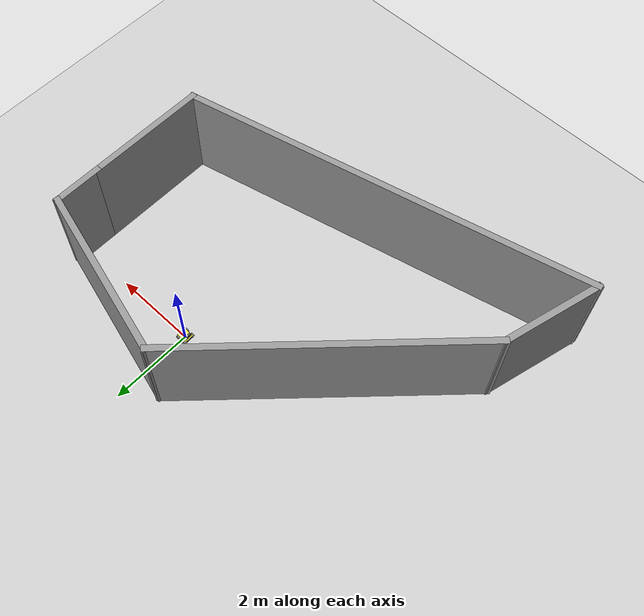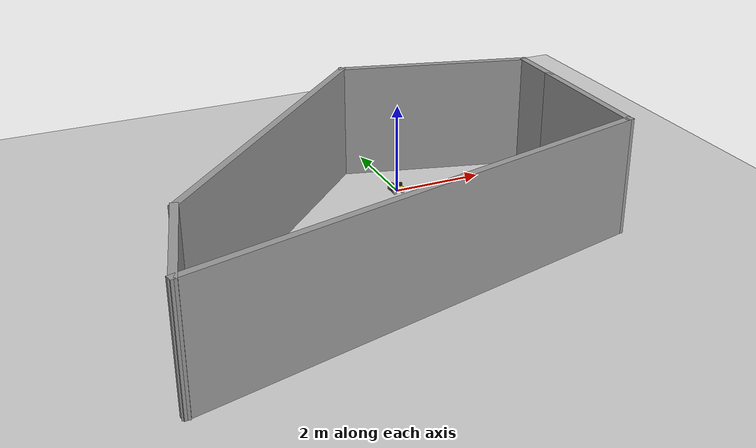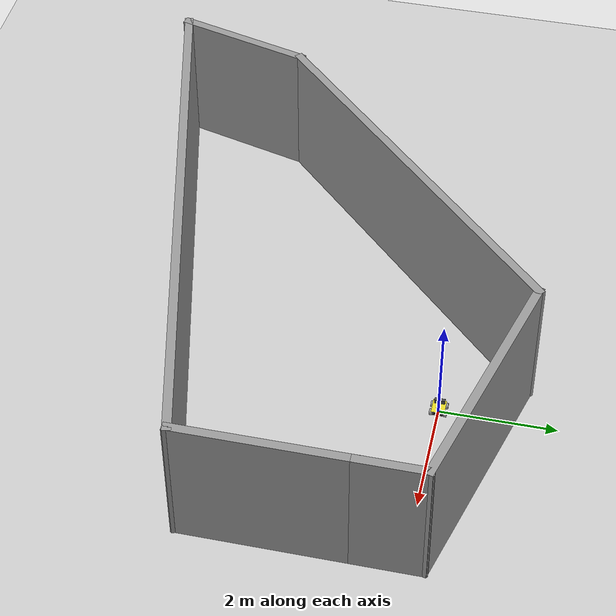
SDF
<sdf version="1.7">
 <world name="default">
  <light name="sun" type="directional">
   <pose>0 0 10 0 -0 0</pose>
   <diffuse>0.8 0.8 0.8 1</diffuse>
   <specular>0.2 0.2 0.2 1</specular>
   <attenuation>
    <range>1000</range>
    <constant>0.9</constant>
    <linear>0.01</linear>
    <quadratic>0.001</quadratic>
   </attenuation>
   <direction>-0.5 0.1 -0.9</direction>
   <spot><inner_angle>0</inner_angle><outer_angle>0</outer_angle><falloff>0</falloff></spot>
  </light>
  <model name="ground_plane">
   <static>1</static>
   <link name="link">
    <collision name="collision">
     <geometry><plane><normal>0 0 1</normal><size>100 100</size></plane></geometry>
     <surface><friction><ode><mu>100</mu><mu2>50</mu2></ode></friction></surface>
    </collision>
    <visual name="visual">
     <cast_shadows>0</cast_shadows>
     <geometry><plane><normal>0 0 1</normal><size>100 100</size></plane></geometry>
     <material>
      <script><uri>file://media/materials/scripts/gazebo.material</uri><name>Gazebo/Grey</name></script>
     </material>
    </visual>
   </link>
  </model>
  <gravity>0 0 -9.8</gravity>
  <magnetic_field>6e-06 2.3e-05 -4.2e-05</magnetic_field>
  <atmosphere type="adiabatic"/>
  <physics type="ode">
   <max_step_size>0.001</max_step_size>
   <real_time_factor>1</real_time_factor>
   <real_time_update_rate>1000</real_time_update_rate>
  </physics>
  <scene><ambient>0.4 0.4 0.4 1</ambient><background>0.7 0.7 0.7 1</background><shadows>1</shadows></scene>
  <audio><device>default</device></audio>
  <spherical_coordinates>
   <surface_model>EARTH_WGS84</surface_model>
   <latitude_deg>0</latitude_deg>
   <longitude_deg>0</longitude_deg>
   <elevation>0</elevation>
   <heading_deg>0</heading_deg>
  </spherical_coordinates>
  <model name="my_bot">
   <link name="base_link">
    <inertial>
     <pose>-0.020625 0 0.113314 0 -0 0</pose>
     <mass>1.6</mass>
     <inertia>
      <ixx>0.00737692</ixx>
      <ixy>0</ixy>
      <ixz>0.00134492</ixz>
      <iyy>0.0127616</iyy>
      <iyz>0</iyz>
      <izz>0.0153067</izz>
     </inertia>
    </inertial>
    <collision name="base_link_fixed_joint_lump__chassis_collision">
     <pose>0 0 0.06886 0 -0 0</pose>
     <geometry><box><size>0.2625 0.18 0.08074</size></box></geometry>
    </collision>
    <collision name="base_link_fixed_joint_lump__back_holder_link_collision_1">
     <pose>-0.086 0 0.15213 0 -0 0</pose>
     <geometry><box><size>0.05 0.18 0.083</size></box></geometry>
    </collision>
    <collision name="base_link_fixed_joint_lump__laser_frame_collision_2">
     <pose>0.1 0 0.14573 0 -0 0</pose>
     <geometry><cylinder><length>0.04</length><radius>0.035</radius></cylinder></geometry>
    </collision>
    <collision name="base_link_fixed_joint_lump__top_plate_link_collision_3">
     <pose>0 0 0.11247 0 -0 0</pose>
     <geometry><box><size>0.278 0.226 0.002</size></box></geometry>
    </collision>
    <visual name="base_link_fixed_joint_lump__chassis_visual">
     <pose>0 0 0.06886 0 -0 0</pose>
     <geometry><box><size>0.2625 0.18 0.08074</size></box></geometry>
     <material>
      <script><name>Gazebo/Black</name><uri>file://media/materials/scripts/gazebo.material</uri></script>
     </material>
    </visual>
    <visual name="base_link_fixed_joint_lump__back_holder_link_visual_1">
     <pose>-0.086 0 0.15213 0 -0 0</pose>
     <geometry><box><size>0.05 0.18 0.083</size></box></geometry>
     <material>
      <script><name>Gazebo/DarkGrey</name><uri>file://media/materials/scripts/gazebo.material</uri></script>
     </material>
    </visual>
    <visual name="base_link_fixed_joint_lump__laser_frame_visual_2">
     <pose>0.1 0 0.14573 0 -0 0</pose>
     <geometry><cylinder><length>0.0729</length><radius>0.035</radius></cylinder></geometry>
     <material>
      <script><name>Gazebo/Black</name><uri>file://media/materials/scripts/gazebo.material</uri></script>
     </material>
    </visual>
    <visual name="base_link_fixed_joint_lump__top_plate_link_visual_3">
     <pose>0 0 0.11247 0 -0 0</pose>
     <geometry><box><size>0.278 0.226 0.002</size></box></geometry>
     <material>
      <script><name>Gazebo/Yellow</name><uri>file://media/materials/scripts/gazebo.material</uri></script>
     </material>
    </visual>
    <sensor name="laser" type="ray">
     <visualize>1</visualize>
     <update_rate>10</update_rate>
     <ray>
      <scan>
       <horizontal>
        <samples>360</samples>
        <min_angle>-3.14</min_angle>
        <max_angle>3.14</max_angle>
        <resolution>1</resolution>
       </horizontal>
       <vertical><samples>1</samples><min_angle>0</min_angle><max_angle>0</max_angle></vertical>
      </scan>
      <range><min>0.3</min><max>12</max></range>
     </ray>
     <plugin name="laser_controller" filename="libgazebo_ros_ray_sensor.so">
      <ros><argument>~/out:=scan</argument></ros>
      <output_type>sensor_msgs/LaserScan</output_type>
      <frame_name>laser_frame</frame_name>
     </plugin>
     <pose>0.1 0 0.14573 0 -0 0</pose>
    </sensor>
   </link>
   <joint name="back_left_joint" type="revolute">
    <pose relative_to="base_link">-0.09 0.120145 0.0525 -1.5708 0 0</pose>
    <parent>base_link</parent>
    <child>back_left_link</child>
    <axis>
     <xyz>0 0 1</xyz>
     <limit><lower>-1e+16</lower><upper>1e+16</upper></limit>
     <dynamics><spring_reference>0</spring_reference><spring_stiffness>0</spring_stiffness></dynamics>
    </axis>
   </joint>
   <link name="back_left_link">
    <pose relative_to="back_left_joint">0 0 0 0 -0 0</pose>
    <inertial>
     <mass>0.5</mass>
     <inertia>
      <ixx>0.000461573</ixx>
      <ixy>0</ixy>
      <ixz>0</ixz>
      <iyy>0.000461573</iyy>
      <iyz>0</iyz>
      <izz>0.000689062</izz>
     </inertia>
    </inertial>
    <collision name="back_left_link_collision">
     <geometry><cylinder><length>0.053</length><radius>0.0525</radius></cylinder></geometry>
    </collision>
    <visual name="back_left_link_visual">
     <geometry><cylinder><length>0.053</length><radius>0.0525</radius></cylinder></geometry>
     <material>
      <script><name>Gazebo/Grey</name><uri>file://media/materials/scripts/gazebo.material</uri></script>
     </material>
    </visual>
   </link>
   <joint name="back_right_joint" type="revolute">
    <pose relative_to="base_link">-0.09 -0.120145 0.0525 1.5708 -0 0</pose>
    <parent>base_link</parent>
    <child>back_right_link</child>
    <axis>
     <xyz>0 0 -1</xyz>
     <limit><lower>-1e+16</lower><upper>1e+16</upper></limit>
     <dynamics><spring_reference>0</spring_reference><spring_stiffness>0</spring_stiffness></dynamics>
    </axis>
   </joint>
   <link name="back_right_link">
    <pose relative_to="back_right_joint">0 0 0 0 -0 0</pose>
    <inertial>
     <mass>0.5</mass>
     <inertia>
      <ixx>0.000461573</ixx>
      <ixy>0</ixy>
      <ixz>0</ixz>
      <iyy>0.000461573</iyy>
      <iyz>0</iyz>
      <izz>0.000689062</izz>
     </inertia>
    </inertial>
    <collision name="back_right_link_collision">
     <geometry><cylinder><length>0.053</length><radius>0.0525</radius></cylinder></geometry>
    </collision>
    <visual name="back_right_link_visual">
     <geometry><cylinder><length>0.053</length><radius>0.0525</radius></cylinder></geometry>
     <material>
      <script><name>Gazebo/Grey</name><uri>file://media/materials/scripts/gazebo.material</uri></script>
     </material>
    </visual>
   </link>
   <joint name="front_left_joint" type="revolute">
    <pose relative_to="base_link">0.09 0.120145 0.0525 -1.5708 0 0</pose>
    <parent>base_link</parent>
    <child>front_left_link</child>
    <axis>
     <xyz>0 0 1</xyz>
     <limit><lower>-1e+16</lower><upper>1e+16</upper></limit>
     <dynamics><spring_reference>0</spring_reference><spring_stiffness>0</spring_stiffness></dynamics>
    </axis>
   </joint>
   <link name="front_left_link">
    <pose relative_to="front_left_joint">0 0 0 0 -0 0</pose>
    <inertial>
     <mass>0.5</mass>
     <inertia>
      <ixx>0.000461573</ixx>
      <ixy>0</ixy>
      <ixz>0</ixz>
      <iyy>0.000461573</iyy>
      <iyz>0</iyz>
      <izz>0.000689062</izz>
     </inertia>
    </inertial>
    <collision name="front_left_link_collision">
     <geometry><cylinder><length>0.053</length><radius>0.0525</radius></cylinder></geometry>
    </collision>
    <visual name="front_left_link_visual">
     <geometry><cylinder><length>0.053</length><radius>0.0525</radius></cylinder></geometry>
     <material>
      <script><name>Gazebo/Grey</name><uri>file://media/materials/scripts/gazebo.material</uri></script>
     </material>
    </visual>
   </link>
   <joint name="front_right_joint" type="revolute">
    <pose relative_to="base_link">0.09 -0.120145 0.0525 1.5708 -0 0</pose>
    <parent>base_link</parent>
    <child>front_right_link</child>
    <axis>
     <xyz>0 0 -1</xyz>
     <limit><lower>-1e+16</lower><upper>1e+16</upper></limit>
     <dynamics><spring_reference>0</spring_reference><spring_stiffness>0</spring_stiffness></dynamics>
    </axis>
   </joint>
   <link name="front_right_link">
    <pose relative_to="front_right_joint">0 0 0 0 -0 0</pose>
    <inertial>
     <mass>0.5</mass>
     <inertia>
      <ixx>0.000461573</ixx>
      <ixy>0</ixy>
      <ixz>0</ixz>
      <iyy>0.000461573</iyy>
      <iyz>0</iyz>
      <izz>0.000689062</izz>
     </inertia>
    </inertial>
    <collision name="front_right_link_collision">
     <geometry><cylinder><length>0.053</length><radius>0.0525</radius></cylinder></geometry>
    </collision>
    <visual name="front_right_link_visual">
     <geometry><cylinder><length>0.053</length><radius>0.0525</radius></cylinder></geometry>
     <material>
      <script><name>Gazebo/Grey</name><uri>file://media/materials/scripts/gazebo.material</uri></script>
     </material>
    </visual>
   </link>
   <static>0</static>
   <plugin name="diff_drive" filename="libgazebo_ros_diff_drive.so">
    <num_wheel_pairs>2</num_wheel_pairs>
    <right_joint>front_right_joint</right_joint>
    <left_joint>front_left_joint</left_joint>
    <right_joint>back_right_joint</right_joint>
    <left_joint>back_left_joint</left_joint>
    <wheel_separation>0.24</wheel_separation>
    <wheel_separation>0.24</wheel_separation>
    <wheel_diameter>0.13</wheel_diameter>
    <wheel_diameter>0.13</wheel_diameter>
    <max_wheel_torque>200</max_wheel_torque>
    <max_wheel_acceleration>10.0</max_wheel_acceleration>
    <odometry_topic>odom</odometry_topic>
    <odometry_frame>odom</odometry_frame>
    <robot_base_frame>base_link</robot_base_frame>
    <publish_odom>1</publish_odom>
    <publish_odom_tf>1</publish_odom_tf>
    <publish_wheel_tf>1</publish_wheel_tf>
   </plugin>
   <plugin name="gazebo_ros_joint_state_publisher" filename="libgazebo_ros_joint_state_publisher.so">
    <updateRate>20</updateRate>
    <joint_name>front_right_joint</joint_name>
    <joint_name>front_left_joint</joint_name>
    <joint_name>back_right_joint</joint_name>
    <joint_name>back_left_joint</joint_name>
   </plugin>
   <pose>-0.014523 -6.2e-05 -3e-06 -0 4e-05 0.005804</pose>
  </model>
  <model name="2">
   <pose>-1.52449 -2.25693 0 0 -0 0</pose>
   <link name="Wall_0">
    <collision name="Wall_0_Collision">
     <geometry><box><size>3 0.15 2.5</size></box></geometry>
     <pose>0 0 1.25 0 -0 0</pose>
    </collision>
    <visual name="Wall_0_Visual">
     <pose>0 0 1.25 0 -0 0</pose>
     <geometry><box><size>3 0.15 2.5</size></box></geometry>
     <material>
      <script><uri>file://media/materials/scripts/gazebo.material</uri><name>Gazebo/Grey</name></script>
      <ambient>1 1 1 1</ambient>
     </material>
     <meta><layer>0</layer></meta>
    </visual>
    <pose>4.79449 0.051928 0 0 -0 1.5708</pose>
   </link>
   <link name="Wall_1">
    <collision name="Wall_1_Collision">
     <geometry><box><size>1.25 0.15 2.5</size></box></geometry>
     <pose>0 0 1.25 0 -0 0</pose>
    </collision>
    <visual name="Wall_1_Visual">
     <pose>0 0 1.25 0 -0 0</pose>
     <geometry><box><size>1.25 0.15 2.5</size></box></geometry>
     <material>
      <script><uri>file://media/materials/scripts/gazebo.material</uri><name>Gazebo/Grey</name></script>
      <ambient>1 1 1 1</ambient>
     </material>
     <meta><layer>0</layer></meta>
    </visual>
    <pose>4.79449 2.02693 0 0 -0 1.5708</pose>
   </link>
   <link name="Wall_2">
    <collision name="Wall_2_Collision">
     <geometry><box><size>4.25 0.15 2.5</size></box></geometry>
     <pose>0 0 1.25 0 -0 0</pose>
    </collision>
    <visual name="Wall_2_Visual">
     <pose>0 0 1.25 0 -0 0</pose>
     <geometry><box><size>4.25 0.15 2.5</size></box></geometry>
     <material>
      <script><uri>file://media/materials/scripts/gazebo.material</uri><name>Gazebo/Grey</name></script>
      <ambient>1 1 1 1</ambient>
     </material>
     <meta><layer>0</layer></meta>
    </visual>
    <pose>2.81434 3.10751 0 0 -0 2.87979</pose>
   </link>
   <link name="Wall_3">
    <collision name="Wall_3_Collision">
     <geometry><box><size>7.25 0.15 2.5</size></box></geometry>
     <pose>0 0 1.25 0 -0 0</pose>
    </collision>
    <visual name="Wall_3_Visual">
     <pose>0 0 1.25 0 -0 0</pose>
     <geometry><box><size>7.25 0.15 2.5</size></box></geometry>
     <material>
      <script><uri>file://media/materials/scripts/gazebo.material</uri><name>Gazebo/Grey</name></script>
      <ambient>1 1 1 1</ambient>
     </material>
     <meta><layer>0</layer></meta>
    </visual>
    <pose>-1.67604 1.12786 0 0 -0 -2.35619</pose>
   </link>
   <link name="Wall_4">
    <collision name="Wall_4_Collision">
     <geometry><box><size>2.5 0.15 2.5</size></box></geometry>
     <pose>0 0 1.25 0 -0 0</pose>
    </collision>
    <visual name="Wall_4_Visual">
     <pose>0 0 1.25 0 -0 0</pose>
     <geometry><box><size>2.5 0.15 2.5</size></box></geometry>
     <material>
      <script><uri>file://media/materials/scripts/gazebo.material</uri><name>Gazebo/Grey</name></script>
      <ambient>1 1 1 1</ambient>
     </material>
     <meta><layer>0</layer></meta>
    </visual>
    <pose>-4.49038 -2.51734 0 0 -0 -1.8326</pose>
   </link>
   <link name="Wall_5">
    <collision name="Wall_5_Collision">
     <geometry><box><size>10.0061 0.15 2.5</size></box></geometry>
     <pose>0 0 1.25 0 -0 0</pose>
    </collision>
    <visual name="Wall_5_Visual">
     <pose>0 0 1.25 0 -0 0</pose>
     <geometry><box><size>10.0061 0.15 2.5</size></box></geometry>
     <material>
      <script><uri>file://media/materials/scripts/gazebo.material</uri><name>Gazebo/Grey</name></script>
      <ambient>1 1 1 1</ambient>
     </material>
     <meta><layer>0</layer></meta>
    </visual>
    <pose>-0 -2.51268 0 0 -0 0.233362</pose>
   </link>
   <static>1</static>
  </model>
 </world>
</sdf>
